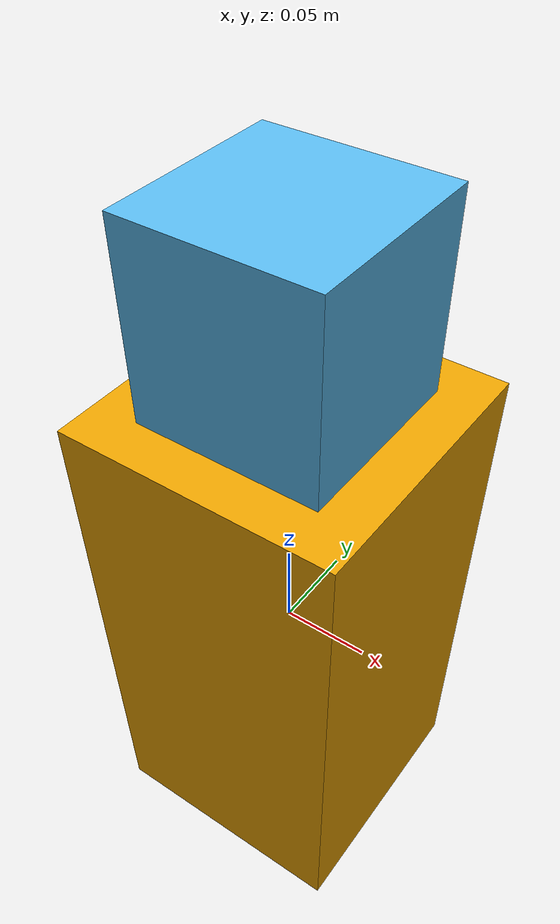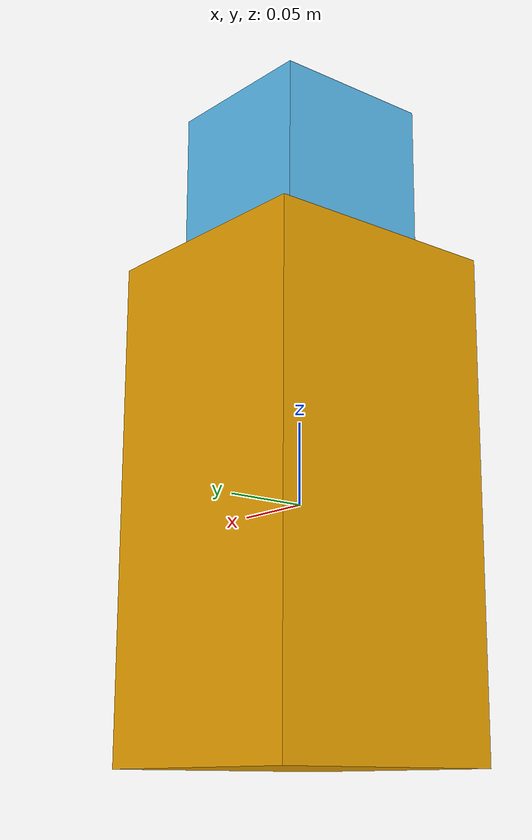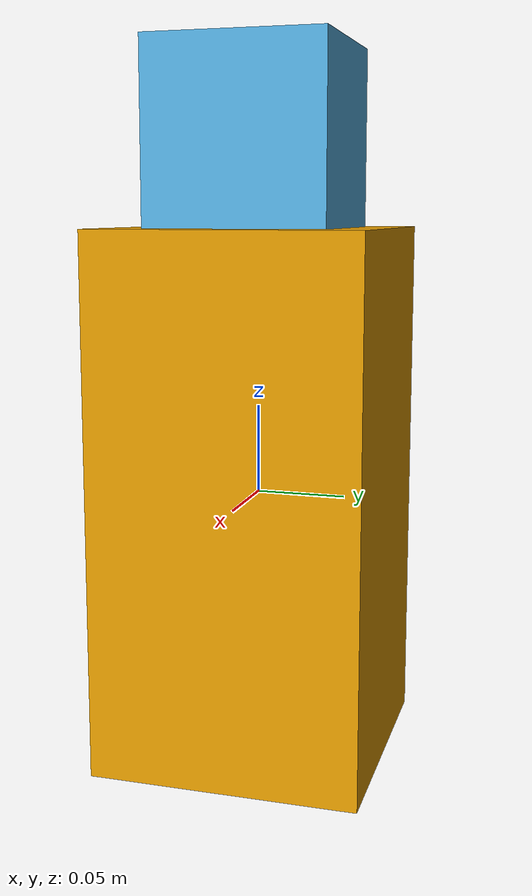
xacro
<?xml version="1.0"?>
<robot name="my_robot">
    <link name="link1">
        <visual>
            <geometry>
                <box size="0.15 0.15 0.3"/>
            </geometry>
        </visual>
        <collision>
            <geometry>
                <box size="0.15 0.15 0.3"/>
            </geometry>
        </collision>
        <inertial>
            <mass value="1.0"/>
            <inertia ixx="0.01" ixy="0.0" ixz="0.0" iyy="0.01" iyz="0.0" izz="0.01"/>
            <origin xyz="0.0 0.0 0.0" rpy="0.0 0.0 0.0"/>
        </inertial>
    </link>
    <link name="link2">
        <visual>
            <geometry>
                <box size="0.1 0.1 0.1"/>
            </geometry>
        </visual>
        <collision>
            <geometry>
                <box size="0.1 0.1 0.1"/>
            </geometry>
        </collision>
        <inertial>
            <mass value="1.0"/>
            <inertia ixx="0.01" ixy="0.0" ixz="0.0" iyy="0.01" iyz="0.0" izz="0.01"/>
            <origin xyz="0.0 0.0 0.0" rpy="0.0 0.0 0.0"/>
        </inertial>
    </link>

    <joint name="joint1" type="revolute">
        <parent link="link1"/>
        <child link="link2"/>
        <axis xyz="0.0 0.0 1.0"/>
        <dynamics damping="1.0" friction="0.5"/>
        <limit effort="5.0" lower="-1e9" upper="1e9" velocity="5.0"/>
        <origin xyz="0.0 0.0 0.2" rpy="0.0 0.0 0.0"/>
    </joint>

    <transmission name="joint1_trans">
        <type>transmission_interface/SimpleTransmission</type>
        <actuator name="joint1_motor">
            <hardwareInterface>hardware_interface/EffortJointInterface</hardwareInterface>
            <mechanicalReduction>19.2032</mechanicalReduction>
        </actuator>
        <joint name="joint1">
            <hardwareInterface>hardware_interface/EffortJointInterface</hardwareInterface>
        </joint>
    </transmission>

    <gazebo>
        <plugin name="rm_ros_control" filename="librm_robot_hw_sim.so">
            <robotNamespace>/</robotNamespace>
            <robotSimType>rm_gazebo/RmRobotHWSim</robotSimType>
        </plugin>
    </gazebo>

</robot>
